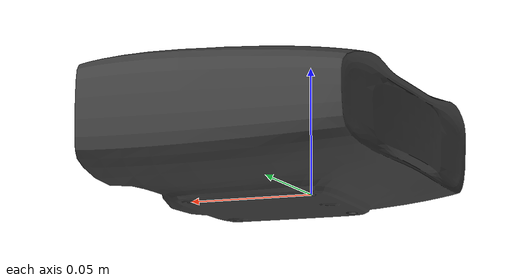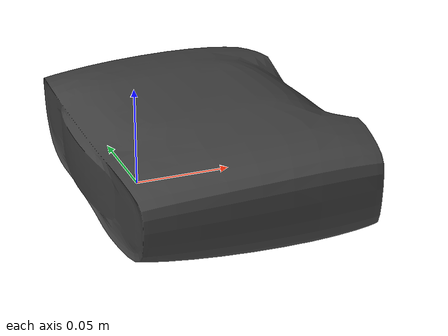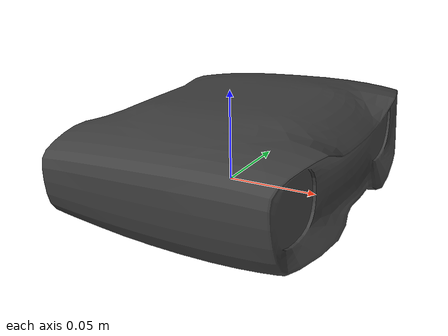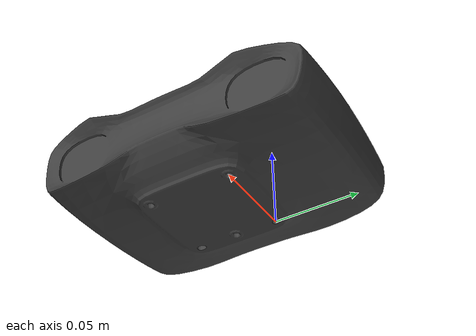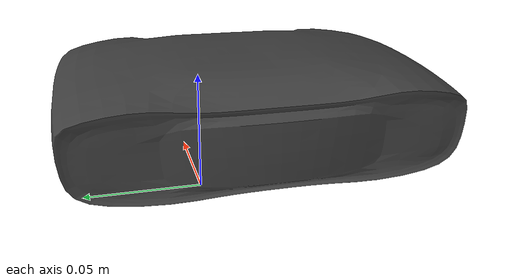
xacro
<?xml version="1.0"?>
<robot name="zivid_camera_robot" xmlns:xacro="http://www.ros.org/wiki/xacro">
    <!-- Specify the Zivid camera model. See available options in `README.md`. -->
    <xacro:arg name="model" default="ZIVID_2_M70" />

    <!-- Specify the visibility of the field of view frustum mush for the camera model. -->
    <xacro:arg name="field_of_view" default="false" />

    <!-- Import and load Zivid camera -->
    <xacro:include filename="macros/zivid_camera.xacro"/>
    <xacro:zivid_camera prefix="zivid_" model="$(arg model)" field_of_view="$(arg field_of_view)"/>
</robot>

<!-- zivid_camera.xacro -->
<robot xmlns:xacro="http://ros.org/wiki/xacro">

    <!-- Import Rviz colors -->
    <xacro:include filename="../zivid_materials.xacro" />

    <xacro:macro name="zivid_camera" params="prefix model field_of_view">
        <xacro:property name="fov_filename" value="" />

        <xacro:if value="${model == 'ZIVID_2_M70'}">
            <xacro:property name="optical_center" value="0.04802 0.03084 0.0295" />
            <xacro:property name="optical_angle_deg" value="3.0" />
            <xacro:property name="fov_filename" value="zivid_2_m70_fov" />
        </xacro:if>
        <xacro:if value="${model == 'ZIVID_2_L100'}">
            <xacro:property name="optical_center" value="0.04802 0.03084 0.0295" />
            <xacro:property name="optical_angle_deg" value="3.0" />
            <xacro:property name="fov_filename" value="zivid_2_l100_fov" />
        </xacro:if>
        <xacro:if value="${model == 'ZIVID_2_PLUS_M60'}">
            <xacro:property name="optical_center" value="0.049 0.03202 0.0295" />
            <xacro:property name="optical_angle_deg" value="2.5" />
            <xacro:property name="fov_filename" value="zivid_2_plus_m60_fov" />
        </xacro:if>
        <xacro:if value="${model == 'ZIVID_2_PLUS_L110'}">
            <xacro:property name="optical_center" value="0.049 0.03202 0.0295" />
            <xacro:property name="optical_angle_deg" value="2.5" />
            <xacro:property name="fov_filename" value="zivid_2_plus_l110_fov" />
        </xacro:if>
        <xacro:if value="${model == 'ZIVID_2_PLUS_M130'}">
            <xacro:property name="optical_center" value="0.040 0.031 0.0295" />
            <xacro:property name="optical_angle_deg" value="0.0" />
            <xacro:property name="fov_filename" value="zivid_2_plus_m130_fov" />
        </xacro:if>
        <xacro:if value="${model == 'ZIVID_2_PLUS_MR60'}">
            <xacro:property name="optical_center" value="0.049 0.03202 0.0295" />
            <xacro:property name="optical_angle_deg" value="2.5" />
            <xacro:property name="fov_filename" value="zivid_2_plus_m60_fov" />
        </xacro:if>
        <xacro:if value="${model == 'ZIVID_2_PLUS_LR110'}">
            <xacro:property name="optical_center" value="0.049 0.03202 0.0295" />
            <xacro:property name="optical_angle_deg" value="2.5" />
            <xacro:property name="fov_filename" value="zivid_2_plus_l110_fov" />
        </xacro:if>
        <xacro:if value="${model == 'ZIVID_2_PLUS_MR130'}">
            <xacro:property name="optical_center" value="0.040 0.031 0.0295" />
            <xacro:property name="optical_angle_deg" value="0.0" />
            <xacro:property name="fov_filename" value="zivid_2_plus_m130_fov" />
        </xacro:if>

        <!-- Make xacro error out if the provided camera model was not recognized -->
        <xacro:if value="${fov_filename == ''}">
            <xacro:if value="${'ERROR: INVALID ZIVID CAMERA MODEL: ' + model}"/>
        </xacro:if>

        <!-- Zivid Base Link -->
        <link name="${prefix}base_link">
            <!-- Visuals -->
            <visual>
                <origin xyz="0 0 0" rpy="0 0 ${0.5*pi}"/>
                <geometry>
                    <mesh filename="package://zivid_description/meshes/visual/zivid_2_plus.stl"/>
                </geometry>
                <material name="zivid_gray"/>
            </visual>

            <!-- Collisions -->
            <collision>
                <origin xyz="0 0 0" rpy="0 0 ${0.5*pi}"/>
                <geometry>
                    <mesh filename="package://zivid_description/meshes/collision/zivid_2_plus_convex_hull.stl"/>
                </geometry>
            </collision>
        </link>

        <!-- Zivid Optical Frame (Measurement Frame)-->
        <link name="${prefix}optical_frame"/>

        <!-- Zivid Optical (Measurement) Joint -->
        <joint name="${prefix}optical_joint" type="fixed">
            <origin xyz="${optical_center}" rpy="-${0.5*pi} 0 -${0.5*pi + float(optical_angle_deg)*pi/180.0}" />
            <parent link="${prefix}base_link"/>
            <child link="${prefix}optical_frame"/>
        </joint>

        <!-- Zivid FOV Mesh Frame -->
        <xacro:if value="${field_of_view}">
            <link name="${prefix}fov_mesh_frame">
                <!-- FOV Mesh -->
                <visual>
                    <origin xyz="0 0 0" rpy="0 0 ${0.5*pi}"/>
                    <geometry>
                        <mesh filename="package://zivid_description/meshes/field_of_view/${fov_filename}.stl"/>
                    </geometry>
                    <material name="zivid_fov"/>
                </visual>
            </link>

            <!-- Zivid FOV Mesh Joint -->
            <joint name="${prefix}fov_mesh_frame" type="fixed">
                <parent link="${prefix}base_link"/>
                <child link="${prefix}fov_mesh_frame"/>
            </joint>
        </xacro:if>
    </xacro:macro>
</robot>

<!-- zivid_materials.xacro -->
<robot>
    <material name="zivid_gray">
        <color rgba="0.25 0.25 0.25 1"/>
    </material>

    <material name="zivid_fov">
        <color rgba="0.15 0.6 1.0 0.5"/>
    </material>
</robot>
